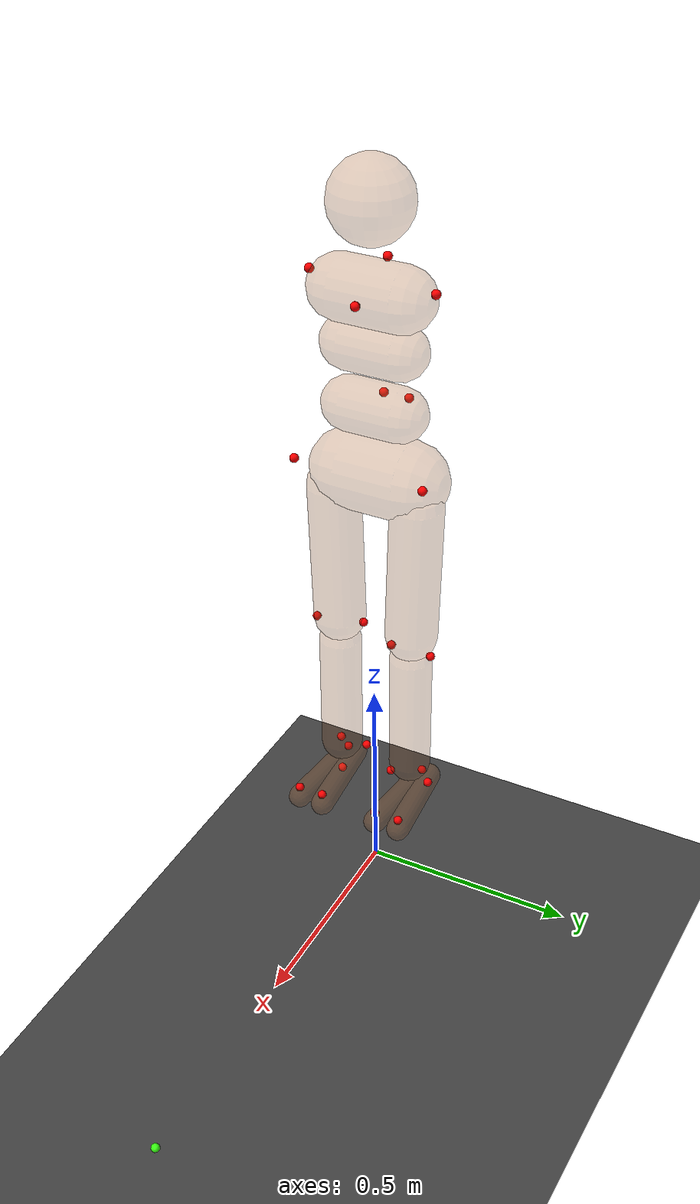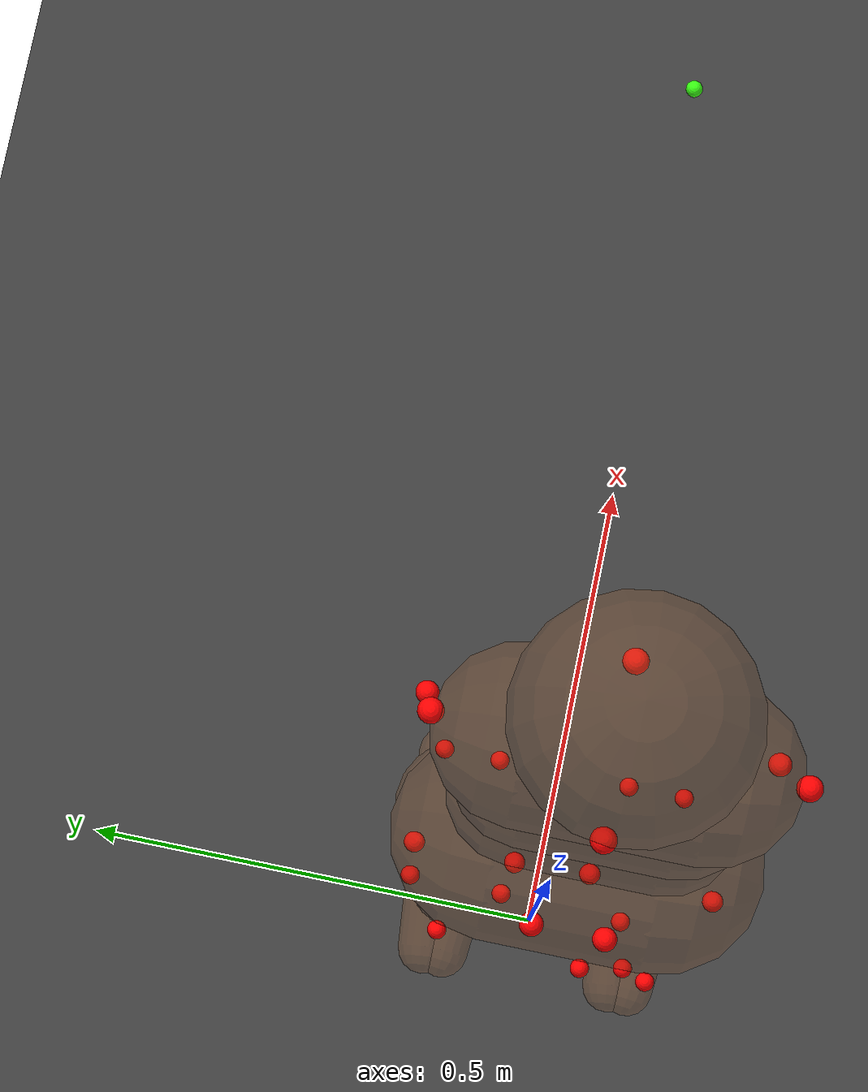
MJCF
<mujoco model="humanoid">

  <statistic extent="2" center="0 0 1"/>

  <option timestep=".005"/>

  <asset>
        <texture type="skybox" builtin="gradient" rgb1=".4 .5 .6" rgb2="0 0 0"
            width="100" height="100"/>
        <texture builtin="flat" height="1278" mark="cross" markrgb="1 1 1" name="texgeom" random="0.01" rgb1="0.8 0.6 0.4" rgb2="0.8 0.6 0.4" type="cube" width="127"/>
        <material name="self" rgba='0.8 0.6 0.4 0.3' texture="texgeom" texuniform="true"/>
        <material name='grid' reflectance='0.000000' texrepeat='1 1' texture='texplane' texuniform='true'/>
        <texture builtin='checker' height='512' name='texplane' rgb1='0.2 0.2 0.2' rgb2='0.3 0.3 0.3' type='2d' width='512'/>
        <material name="mocap_material" rgba='0.22 1. 0.07 1.'/>
  </asset>

  <default>
    <motor ctrlrange="-1 1" ctrllimited="true"/>
    <default class="body">
      <geom  type="capsule" condim="1" friction=".7" solimp=".9 .99 .003" solref=".015 1" material="self"/>
      <joint type="hinge" damping=".2" stiffness="1" armature=".01" limited="true" solimplimit="0 .99 .01"/>
      <default class="big_joint">
        <joint damping="5" stiffness="10"/>
        <default class="big_stiff_joint">
          <joint stiffness="20"/>
        </default>
      </default>
    </default>
  </default>

  <worldbody>
    <body name="floor" pos="0 0 0" childclass="body">
      <geom name="floor" type="plane" conaffinity="1" size="100 100 .2" material="grid"/>
    </body>
    <!-- MOCAP markers start-->
    <body mocap='true' name="m0" pos="1 0 0" >
      <geom type='sphere' size="0.01" material="mocap_material"/>
    </body>

    <body mocap='true' name="m1" pos="1 0 0" >
      <geom type='sphere' size="0.01" material="mocap_material"/>
    </body>

    <body mocap='true' name="m2" pos="1 0 0" >
      <geom type='sphere' size="0.01" material="mocap_material"/>
    </body>

    <body mocap='true' name="m3" pos="1 0 0" >
      <geom type='sphere' size="0.01" material="mocap_material"/>
    </body>

    <body mocap='true' name="m4" pos="1 0 0" >
      <geom type='sphere' size="0.01" material="mocap_material"/>
    </body>

    <body mocap='true' name="m5" pos="1 0 0" >
      <geom type='sphere' size="0.01" material="mocap_material"/>
    </body>

    <body mocap='true' name="m6" pos="1 0 0" >
      <geom type='sphere' size="0.01" material="mocap_material"/>
    </body>

    <body mocap='true' name="m7" pos="1 0 0" >
      <geom type='sphere' size="0.01" material="mocap_material"/>
    </body>

    <body mocap='true' name="m8" pos="1 0 0" >
      <geom type='sphere' size="0.01" material="mocap_material"/>
    </body>

    <body mocap='true' name="m9" pos="1 0 0" >
      <geom type='sphere' size="0.01" material="mocap_material"/>
    </body>

    <body mocap='true' name="m10" pos="1 0 0" >
      <geom type='sphere' size="0.01" material="mocap_material"/>
    </body>

    <body mocap='true' name="m11" pos="1 0 0" >
      <geom type='sphere' size="0.01" material="mocap_material"/>
    </body>

    <body mocap='true' name="m12" pos="1 0 0" >
      <geom type='sphere' size="0.01" material="mocap_material"/>
    </body>

    <body mocap='true' name="m13" pos="1 0 0" >
      <geom type='sphere' size="0.01" material="mocap_material"/>
    </body>

    <body mocap='true' name="m14" pos="1 0 0" >
      <geom type='sphere' size="0.01" material="mocap_material"/>
    </body>

    <body mocap='true' name="m15" pos="1 0 0" >
      <geom type='sphere' size="0.01" material="mocap_material"/>
    </body>

    <body mocap='true' name="m16" pos="1 0 0" >
      <geom type='sphere' size="0.01" material="mocap_material"/>
    </body>

    <body mocap='true' name="m17" pos="1 0 0" >
      <geom type='sphere' size="0.01" material="mocap_material"/>
    </body>

    <body mocap='true' name="m18" pos="1 0 0" >
      <geom type='sphere' size="0.01" material="mocap_material"/>
    </body>

    <body mocap='true' name="m19" pos="1 0 0" >
      <geom type='sphere' size="0.01" material="mocap_material"/>
    </body>

    <body mocap='true' name="m20" pos="1 0 0" >
      <geom type='sphere' size="0.01" material="mocap_material"/>
    </body>

    <body mocap='true' name="m21" pos="1 0 0" >
      <geom type='sphere' size="0.01" material="mocap_material"/>
    </body>

    <body mocap='true' name="m22" pos="1 0 0" >
      <geom type='sphere' size="0.01" material="mocap_material"/>
    </body>

    <body mocap='true' name="m23" pos="1 0 0" >
      <geom type='sphere' size="0.01" material="mocap_material"/>
    </body>

    <body mocap='true' name="m24" pos="1 0 0" >
      <geom type='sphere' size="0.01" material="mocap_material"/>
    </body>

    <body mocap='true' name="m25" pos="1 0 0" >
      <geom type='sphere' size="0.01" material="mocap_material"/>
    </body>

    <body mocap='true' name="m26" pos="1 0 0" >
      <geom type='sphere' size="0.01" material="mocap_material"/>
    </body>

    <body mocap='true' name="m27" pos="1 0 0" >
      <geom type='sphere' size="0.01" material="mocap_material"/>
    </body>

    <body mocap='true' name="m28" pos="1 0 0" >
      <geom type='sphere' size="0.01" material="mocap_material"/>
    </body>

    <body mocap='true' name="m29" pos="1 0 0" >
      <geom type='sphere' size="0.01" material="mocap_material"/>
    </body>

    <body mocap='true' name="m30" pos="1 0 0" >
      <geom type='sphere' size="0.01" material="mocap_material"/>
    </body>

    <body mocap='true' name="m31" pos="1 0 0" >
      <geom type='sphere' size="0.01" material="mocap_material"/>
    </body>

    <body mocap='true' name="m32" pos="1 0 0" >
      <geom type='sphere' size="0.01" material="mocap_material"/>
    </body>

    <body mocap='true' name="m33" pos="1 0 0" >
      <geom type='sphere' size="0.01" material="mocap_material"/>
    </body>

    <body mocap='true' name="m34" pos="1 0 0" >
      <geom type='sphere' size="0.01" material="mocap_material"/>
    </body>

    <body mocap='true' name="m35" pos="1 0 0" >
      <geom type='sphere' size="0.01" material="mocap_material"/>
    </body>

    <body mocap='true' name="m36" pos="1 0 0" >
      <geom type='sphere' size="0.01" material="mocap_material"/>
    </body>

    <body mocap='true' name="m37" pos="1 0 0" >
      <geom type='sphere' size="0.01" material="mocap_material"/>
    </body>

    <body mocap='true' name="m38" pos="1 0 0" >
      <geom type='sphere' size="0.01" material="mocap_material"/>
    </body>

    <body mocap='true' name="m39" pos="1 0 0" >
      <geom type='sphere' size="0.01" material="mocap_material"/>
    </body>

    <!-- MOCAP markers end-->

    <body name="torso" pos="0 0 1.5" childclass="body">
      <light name="top" pos="0 0 2" mode="trackcom"/>
      <camera name="back" pos="-3 0 1" xyaxes="0 -1 0 1 0 2" mode="trackcom"/>
      <camera name="side" pos="0 -3 1" xyaxes="1 0 0 0 1 2" mode="trackcom"/>
      <freejoint name="root"/>
      <geom name="torso" fromto="0 -.07 0 0 .07 0" size=".07"/>

      <site name="C7" type="sphere" rgba="1. 0. 0. 1." pos="-0.07 0 0.05" size="0.01"/>
      <site name="RSHO" type="sphere" rgba="1. 0. 0. 1." pos="0 -.14 0.025" size="0.01"/>
      <site name="LSHO" type="sphere" rgba="1. 0. 0. 1." pos="0 .14 0.025" size="0.01"/>
      <site name="CLAV" type="sphere" rgba="1. 0. 0. 1." pos=".07 0 0" size="0.01"/>

      <geom name="upper_waist" fromto="-.01 -.06 -.12 -.01 .06 -.12" size=".06"/>
      <body name="head" pos="0 0 .19">
        <geom name="head" type="sphere" size=".09"/>
        <camera name="egocentric" pos=".09 0 0" xyaxes="0 -1 0 .1 0 1" fovy="80"/>
      </body>
      <body name="lower_waist" pos="-.01 0 -.260" quat="1.000 0 -.002 0">
        <geom name="lower_waist" fromto="0 -.06 0 0 .06 0" size=".06"/>
        <joint name="abdomen_z" pos="0 0 .065" axis="0 0 1" range="-45 45" class="big_stiff_joint"/>
        <joint name="abdomen_y" pos="0 0 .065" axis="0 1 0" range="-75 30" class="big_joint"/>
        <body name="pelvis" pos="0 0 -.165" quat="1.000 0 -.002 0">
          <joint name="abdomen_x" pos="0 0 .1" axis="1 0 0" range="-35 35" class="big_joint"/>

          <site name="RASI" type="sphere" rgba="1. 0. 0. 1." pos="0.08 -.15 0.05" size="0.01"/>
          <site name="LASI" type="sphere" rgba="1. 0. 0. 1." pos="0.08 .15 0.05" size="0.01"/>
          <site name="RPSI" type="sphere" rgba="1. 0. 0. 1." pos="-.10 -0.03 0.15" size="0.01"/>
          <site name="LPSI" type="sphere" rgba="1. 0. 0. 1." pos="-.10 0.03 0.15" size="0.01"/>

          <geom name="butt" fromto="-.02 -.07 0 -.02 .07 0" size=".09"/>
          <body name="right_thigh" pos="0 -.1 -.04">
            <joint name="right_hip_x" axis="1 0 0" range="-25 5"   class="big_joint"/>
            <joint name="right_hip_z" axis="0 0 1" range="-60 35"  class="big_joint"/>
            <joint name="right_hip_y" axis="0 1 0" range="-110 20" class="big_stiff_joint"/>
            <geom name="right_thigh" fromto="0 0 0 0 .01 -.34" size=".06"/>
            <body name="right_shin" pos="0 .01 -.403">
              <joint name="right_knee" pos="0 0 .02" axis="0 -1 0" range="-160 2"/>
              <site name="right_leg/RKNL" type="sphere" rgba="1. 0. 0. 1." pos="0 -.06 .04" size="0.01"/>
              <site name="right_leg/RKNM" type="sphere" rgba="1. 0. 0. 1." pos="0 0.06 .06" size="0.01"/>

              <geom name="right_shin" fromto="0 0 0 0 0 -.3"  size=".049"/>
              <body name="right_foot" pos="0 0 -.39">
                <site name="right_foot" type="sphere" rgba="1. 0. 0. 1." pos="0 0 0" size="0.01"/>

                <joint name="right_ankle_y" pos="0 0 .08" axis="0 1 0"   range="-50 50" stiffness="6"/>
                <joint name="right_ankle_x" pos="0 0 .04" axis="1 0 .5" range="-50 50" stiffness="3"/>

                <geom name="right_right_foot" fromto="-.07 -.02 0 .14 -.04 0" size=".027"/>
                <geom name="left_right_foot" fromto="-.07 0 0 .14  .02 0" size=".027"/>

                <site name="right_leg/RANL" type="sphere" rgba="1. 0. 0. 1." pos="-0.06 -.035 0.04" size="0.01"/>
                <site name="right_leg/RANM" type="sphere" rgba="1. 0. 0. 1." pos="-0.06 0.035 0.04" size="0.01"/>

                <site name="right_leg/RM5" type="sphere" rgba="1. 0. 0. 1." pos="0.14 -.04 .027" size="0.01"/>
                <site name="right_leg/RM1" type="sphere" rgba="1. 0. 0. 1." pos="0.14 0.02 .027" size="0.01"/>
                <site name="right_leg/RHEE" type="sphere" rgba="1. 0. 0. 1." pos="-0.05 -.01 .027" size="0.01"/>

              </body>
            </body>
          </body>
          <body name="left_thigh" pos="0 .1 -.04">
            <joint name="left_hip_x" axis="-1 0 0" range="-25 5"  class="big_joint"/>
            <joint name="left_hip_z" axis="0 0 -1" range="-60 35" class="big_joint"/>
            <joint name="left_hip_y" axis="0 1 0" range="-120 20" class="big_stiff_joint"/>
            <geom name="left_thigh" fromto="0 0 0 0 -.01 -.34" size=".06"/>
            <body name="left_shin" pos="0 -.01 -.403">
              <joint name="left_knee" pos="0 0 .02" axis="0 -1 0" range="-160 2"/>
              <geom name="left_shin" fromto="0 0 0 0 0 -.3"  size=".049"/>
              <site name="left_leg/LKNL" type="sphere" rgba="1. 0. 0. 1." pos="0 -.049 .02" size="0.01"/>
              <site name="left_leg/LKNM" type="sphere" rgba="1. 0. 0. 1." pos="0 0.049 .02" size="0.01"/>

              <body name="left_foot" pos="0 0 -.39">
                <joint name="left_ankle_y" pos="0 0 .08" axis="0 1 0"   range="-50 50" stiffness="6"/>
                <joint name="left_ankle_x" pos="0 0 .04" axis="1 0 .5" range="-50 50" stiffness="3"/>

                <geom name="left_left_foot" fromto="-.07 .02 0 .14 .04 0" size=".027"/>
                <geom name="right_left_foot" fromto="-.07 0 0 .14  -.02 0" size=".027"/>

                <site name="left_leg/LANL" type="sphere" rgba="1. 0. 0. 1." pos="0 -.049 0.04" size="0.01"/>
                <site name="left_leg/LANM" type="sphere" rgba="1. 0. 0. 1." pos="0 0.049 0.04" size="0.01"/>

                <site name="left_leg/LM5" type="sphere" rgba="1. 0. 0. 1." pos="0.14 .04 .027" size="0.01"/>
                <site name="left_leg/LM1" type="sphere" rgba="1. 0. 0. 1." pos="0.14 -0.02 .027" size="0.01"/>
                <site name="left_leg/LHEE" type="sphere" rgba="1. 0. 0. 1." pos="-0.05 0.01 .027" size="0.01"/>

              </body>
            </body>
          </body>
        </body>
      </body>
    </body>
  </worldbody>

  <actuator>
    <motor name="abdomen_y"       gear="40"  joint="abdomen_y"/>
    <motor name="abdomen_z"       gear="40"  joint="abdomen_z"/>
    <motor name="abdomen_x"       gear="40"  joint="abdomen_x"/>
    <motor name="right_hip_x"     gear="40"  joint="right_hip_x"/> <!-- roll -->
    <motor name="right_hip_z"     gear="40"  joint="right_hip_z"/> <!-- yaw -->
    <motor name="right_hip_y"     gear="120" joint="right_hip_y"/> <!-- pitch -->
    <motor name="right_knee"      gear="80"  joint="right_knee"/> <!-- pitch -->
    <motor name="right_ankle_y"   gear="20"  joint="right_ankle_y"/> <!-- pitch -->
    <motor name="right_ankle_x"   gear="20"  joint="right_ankle_x"/> <!-- roll -->
    <motor name="left_hip_x"      gear="40"  joint="left_hip_x"/>
    <motor name="left_hip_z"      gear="40"  joint="left_hip_z"/>
    <motor name="left_hip_y"      gear="120" joint="left_hip_y"/>
    <motor name="left_knee"       gear="80"  joint="left_knee"/>
    <motor name="left_ankle_y"    gear="20"  joint="left_ankle_y"/>
    <motor name="left_ankle_x"    gear="20"  joint="left_ankle_x"/>
  </actuator>

  <equality>
    <weld name='world_root' active="false" body1='floor' body2='torso' relpose="0. 0. 2. 1. 0 0 0"/>
    <joint name="abdomen_y" active="true" joint1="abdomen_y"/>
    <joint name="abdomen_z" active="true" joint1="abdomen_z"/>
    <joint name="abdomen_x" active="true" joint1="abdomen_x"/>
  </equality>

</mujoco>
